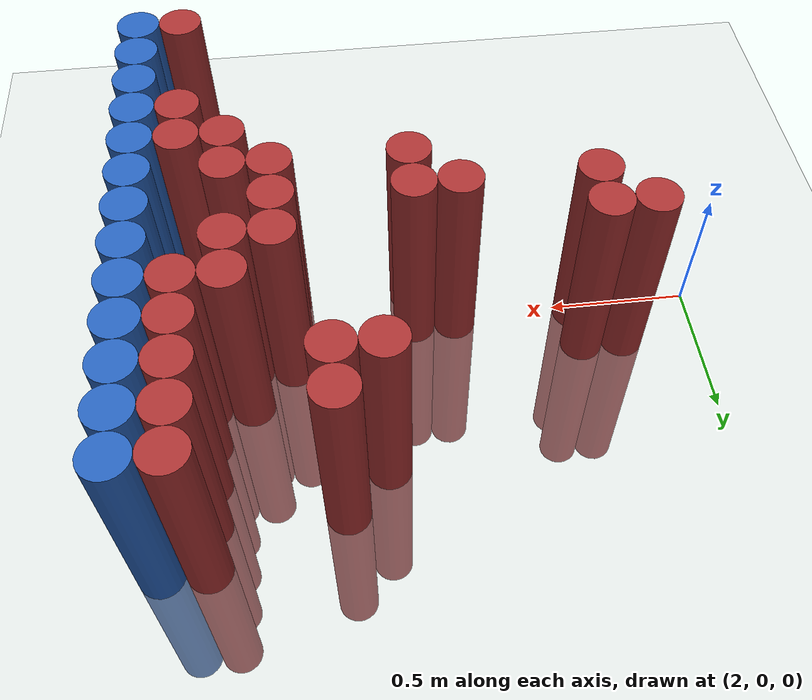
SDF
<sdf version="1.6">
 <world name="default">
  <model name="ground_plane">
   <static>1</static>
   <link name="link">
    <collision name="collision">
     <geometry><plane><normal>0 0 1</normal><size>100 100</size></plane></geometry>
     <surface><friction><ode><mu>100</mu><mu2>50</mu2></ode></friction></surface>
    </collision>
    <visual name="visual">
     <cast_shadows>0</cast_shadows>
     <geometry><plane><normal>0 0 1</normal><size>100 100</size></plane></geometry>
     <material>
      <script><uri>file://media/materials/scripts/gazebo.material</uri><name>Gazebo/Grey</name></script>
     </material>
    </visual>
   </link>
  </model>
  <model name="unit_cylinder_102">
   <static>1</static>
   <pose>3.925000 -0.875000 0.000000 0.000000 0.000000 0.000000</pose>
   <link name="link">
    <inertial>
     <mass>1</mass>
     <inertia><ixx>0.145833</ixx><ixy>0</ixy><ixz>0</ixz><iyy>0.145833</iyy><iyz>0</iyz><izz>0.125</izz></inertia>
    </inertial>
    <collision name="collision">
     <geometry><cylinder><radius>0.075000</radius><length>1.5</length></cylinder></geometry>
    </collision>
    <visual name="visual">
     <geometry><cylinder><radius>0.075000</radius><length>1.5</length></cylinder></geometry>
     <material>
      <ambient>0.152000 0.379000 0.720000 1</ambient>
      <diffuse>0.152000 0.379000 0.720000 1</diffuse>
     </material>
     <material>
      <script><name>Gazebo/Grey</name><uri>file://media/materials/scripts/gazebo.material</uri></script>
     </material>
    </visual>
   </link>
  </model>
  <model name="unit_cylinder_104">
   <static>1</static>
   <pose>3.925000 -0.725000 0.000000 0.000000 0.000000 0.000000</pose>
   <link name="link">
    <inertial>
     <mass>1</mass>
     <inertia><ixx>0.145833</ixx><ixy>0</ixy><ixz>0</ixz><iyy>0.145833</iyy><iyz>0</iyz><izz>0.125</izz></inertia>
    </inertial>
    <collision name="collision">
     <geometry><cylinder><radius>0.075000</radius><length>1.5</length></cylinder></geometry>
    </collision>
    <visual name="visual">
     <geometry><cylinder><radius>0.075000</radius><length>1.5</length></cylinder></geometry>
     <material>
      <ambient>0.152000 0.379000 0.720000 1</ambient>
      <diffuse>0.152000 0.379000 0.720000 1</diffuse>
     </material>
     <material>
      <script><name>Gazebo/Grey</name><uri>file://media/materials/scripts/gazebo.material</uri></script>
     </material>
    </visual>
   </link>
  </model>
  <model name="unit_cylinder_106">
   <static>1</static>
   <pose>3.925000 -0.575000 0.000000 0.000000 0.000000 0.000000</pose>
   <link name="link">
    <inertial>
     <mass>1</mass>
     <inertia><ixx>0.145833</ixx><ixy>0</ixy><ixz>0</ixz><iyy>0.145833</iyy><iyz>0</iyz><izz>0.125</izz></inertia>
    </inertial>
    <collision name="collision">
     <geometry><cylinder><radius>0.075000</radius><length>1.5</length></cylinder></geometry>
    </collision>
    <visual name="visual">
     <geometry><cylinder><radius>0.075000</radius><length>1.5</length></cylinder></geometry>
     <material>
      <ambient>0.152000 0.379000 0.720000 1</ambient>
      <diffuse>0.152000 0.379000 0.720000 1</diffuse>
     </material>
     <material>
      <script><name>Gazebo/Grey</name><uri>file://media/materials/scripts/gazebo.material</uri></script>
     </material>
    </visual>
   </link>
  </model>
  <model name="unit_cylinder_108">
   <static>1</static>
   <pose>3.925000 -0.425000 0.000000 0.000000 0.000000 0.000000</pose>
   <link name="link">
    <inertial>
     <mass>1</mass>
     <inertia><ixx>0.145833</ixx><ixy>0</ixy><ixz>0</ixz><iyy>0.145833</iyy><iyz>0</iyz><izz>0.125</izz></inertia>
    </inertial>
    <collision name="collision">
     <geometry><cylinder><radius>0.075000</radius><length>1.5</length></cylinder></geometry>
    </collision>
    <visual name="visual">
     <geometry><cylinder><radius>0.075000</radius><length>1.5</length></cylinder></geometry>
     <material>
      <ambient>0.152000 0.379000 0.720000 1</ambient>
      <diffuse>0.152000 0.379000 0.720000 1</diffuse>
     </material>
     <material>
      <script><name>Gazebo/Grey</name><uri>file://media/materials/scripts/gazebo.material</uri></script>
     </material>
    </visual>
   </link>
  </model>
  <model name="unit_cylinder_110">
   <static>1</static>
   <pose>3.925000 -0.275000 0.000000 0.000000 0.000000 0.000000</pose>
   <link name="link">
    <inertial>
     <mass>1</mass>
     <inertia><ixx>0.145833</ixx><ixy>0</ixy><ixz>0</ixz><iyy>0.145833</iyy><iyz>0</iyz><izz>0.125</izz></inertia>
    </inertial>
    <collision name="collision">
     <geometry><cylinder><radius>0.075000</radius><length>1.5</length></cylinder></geometry>
    </collision>
    <visual name="visual">
     <geometry><cylinder><radius>0.075000</radius><length>1.5</length></cylinder></geometry>
     <material>
      <ambient>0.152000 0.379000 0.720000 1</ambient>
      <diffuse>0.152000 0.379000 0.720000 1</diffuse>
     </material>
     <material>
      <script><name>Gazebo/Grey</name><uri>file://media/materials/scripts/gazebo.material</uri></script>
     </material>
    </visual>
   </link>
  </model>
  <model name="unit_cylinder_112">
   <static>1</static>
   <pose>3.925000 -0.125000 0.000000 0.000000 0.000000 0.000000</pose>
   <link name="link">
    <inertial>
     <mass>1</mass>
     <inertia><ixx>0.145833</ixx><ixy>0</ixy><ixz>0</ixz><iyy>0.145833</iyy><iyz>0</iyz><izz>0.125</izz></inertia>
    </inertial>
    <collision name="collision">
     <geometry><cylinder><radius>0.075000</radius><length>1.5</length></cylinder></geometry>
    </collision>
    <visual name="visual">
     <geometry><cylinder><radius>0.075000</radius><length>1.5</length></cylinder></geometry>
     <material>
      <ambient>0.152000 0.379000 0.720000 1</ambient>
      <diffuse>0.152000 0.379000 0.720000 1</diffuse>
     </material>
     <material>
      <script><name>Gazebo/Grey</name><uri>file://media/materials/scripts/gazebo.material</uri></script>
     </material>
    </visual>
   </link>
  </model>
  <model name="unit_cylinder_114">
   <static>1</static>
   <pose>3.925000 0.025000 0.000000 0.000000 0.000000 0.000000</pose>
   <link name="link">
    <inertial>
     <mass>1</mass>
     <inertia><ixx>0.145833</ixx><ixy>0</ixy><ixz>0</ixz><iyy>0.145833</iyy><iyz>0</iyz><izz>0.125</izz></inertia>
    </inertial>
    <collision name="collision">
     <geometry><cylinder><radius>0.075000</radius><length>1.5</length></cylinder></geometry>
    </collision>
    <visual name="visual">
     <geometry><cylinder><radius>0.075000</radius><length>1.5</length></cylinder></geometry>
     <material>
      <ambient>0.152000 0.379000 0.720000 1</ambient>
      <diffuse>0.152000 0.379000 0.720000 1</diffuse>
     </material>
     <material>
      <script><name>Gazebo/Grey</name><uri>file://media/materials/scripts/gazebo.material</uri></script>
     </material>
    </visual>
   </link>
  </model>
  <model name="unit_cylinder_116">
   <static>1</static>
   <pose>3.925000 0.175000 0.000000 0.000000 0.000000 0.000000</pose>
   <link name="link">
    <inertial>
     <mass>1</mass>
     <inertia><ixx>0.145833</ixx><ixy>0</ixy><ixz>0</ixz><iyy>0.145833</iyy><iyz>0</iyz><izz>0.125</izz></inertia>
    </inertial>
    <collision name="collision">
     <geometry><cylinder><radius>0.075000</radius><length>1.5</length></cylinder></geometry>
    </collision>
    <visual name="visual">
     <geometry><cylinder><radius>0.075000</radius><length>1.5</length></cylinder></geometry>
     <material>
      <ambient>0.152000 0.379000 0.720000 1</ambient>
      <diffuse>0.152000 0.379000 0.720000 1</diffuse>
     </material>
     <material>
      <script><name>Gazebo/Grey</name><uri>file://media/materials/scripts/gazebo.material</uri></script>
     </material>
    </visual>
   </link>
  </model>
  <model name="unit_cylinder_118">
   <static>1</static>
   <pose>3.925000 0.325000 0.000000 0.000000 0.000000 0.000000</pose>
   <link name="link">
    <inertial>
     <mass>1</mass>
     <inertia><ixx>0.145833</ixx><ixy>0</ixy><ixz>0</ixz><iyy>0.145833</iyy><iyz>0</iyz><izz>0.125</izz></inertia>
    </inertial>
    <collision name="collision">
     <geometry><cylinder><radius>0.075000</radius><length>1.5</length></cylinder></geometry>
    </collision>
    <visual name="visual">
     <geometry><cylinder><radius>0.075000</radius><length>1.5</length></cylinder></geometry>
     <material>
      <ambient>0.152000 0.379000 0.720000 1</ambient>
      <diffuse>0.152000 0.379000 0.720000 1</diffuse>
     </material>
     <material>
      <script><name>Gazebo/Grey</name><uri>file://media/materials/scripts/gazebo.material</uri></script>
     </material>
    </visual>
   </link>
  </model>
  <model name="unit_cylinder_120">
   <static>1</static>
   <pose>3.925000 0.475000 0.000000 0.000000 0.000000 0.000000</pose>
   <link name="link">
    <inertial>
     <mass>1</mass>
     <inertia><ixx>0.145833</ixx><ixy>0</ixy><ixz>0</ixz><iyy>0.145833</iyy><iyz>0</iyz><izz>0.125</izz></inertia>
    </inertial>
    <collision name="collision">
     <geometry><cylinder><radius>0.075000</radius><length>1.5</length></cylinder></geometry>
    </collision>
    <visual name="visual">
     <geometry><cylinder><radius>0.075000</radius><length>1.5</length></cylinder></geometry>
     <material>
      <ambient>0.152000 0.379000 0.720000 1</ambient>
      <diffuse>0.152000 0.379000 0.720000 1</diffuse>
     </material>
     <material>
      <script><name>Gazebo/Grey</name><uri>file://media/materials/scripts/gazebo.material</uri></script>
     </material>
    </visual>
   </link>
  </model>
  <model name="unit_cylinder_122">
   <static>1</static>
   <pose>3.925000 0.625000 0.000000 0.000000 0.000000 0.000000</pose>
   <link name="link">
    <inertial>
     <mass>1</mass>
     <inertia><ixx>0.145833</ixx><ixy>0</ixy><ixz>0</ixz><iyy>0.145833</iyy><iyz>0</iyz><izz>0.125</izz></inertia>
    </inertial>
    <collision name="collision">
     <geometry><cylinder><radius>0.075000</radius><length>1.5</length></cylinder></geometry>
    </collision>
    <visual name="visual">
     <geometry><cylinder><radius>0.075000</radius><length>1.5</length></cylinder></geometry>
     <material>
      <ambient>0.152000 0.379000 0.720000 1</ambient>
      <diffuse>0.152000 0.379000 0.720000 1</diffuse>
     </material>
     <material>
      <script><name>Gazebo/Grey</name><uri>file://media/materials/scripts/gazebo.material</uri></script>
     </material>
    </visual>
   </link>
  </model>
  <model name="unit_cylinder_124">
   <static>1</static>
   <pose>3.925000 0.775000 0.000000 0.000000 0.000000 0.000000</pose>
   <link name="link">
    <inertial>
     <mass>1</mass>
     <inertia><ixx>0.145833</ixx><ixy>0</ixy><ixz>0</ixz><iyy>0.145833</iyy><iyz>0</iyz><izz>0.125</izz></inertia>
    </inertial>
    <collision name="collision">
     <geometry><cylinder><radius>0.075000</radius><length>1.5</length></cylinder></geometry>
    </collision>
    <visual name="visual">
     <geometry><cylinder><radius>0.075000</radius><length>1.5</length></cylinder></geometry>
     <material>
      <ambient>0.152000 0.379000 0.720000 1</ambient>
      <diffuse>0.152000 0.379000 0.720000 1</diffuse>
     </material>
     <material>
      <script><name>Gazebo/Grey</name><uri>file://media/materials/scripts/gazebo.material</uri></script>
     </material>
    </visual>
   </link>
  </model>
  <model name="unit_cylinder_126">
   <static>1</static>
   <pose>3.925000 0.925000 0.000000 0.000000 0.000000 0.000000</pose>
   <link name="link">
    <inertial>
     <mass>1</mass>
     <inertia><ixx>0.145833</ixx><ixy>0</ixy><ixz>0</ixz><iyy>0.145833</iyy><iyz>0</iyz><izz>0.125</izz></inertia>
    </inertial>
    <collision name="collision">
     <geometry><cylinder><radius>0.075000</radius><length>1.5</length></cylinder></geometry>
    </collision>
    <visual name="visual">
     <geometry><cylinder><radius>0.075000</radius><length>1.5</length></cylinder></geometry>
     <material>
      <ambient>0.152000 0.379000 0.720000 1</ambient>
      <diffuse>0.152000 0.379000 0.720000 1</diffuse>
     </material>
     <material>
      <script><name>Gazebo/Grey</name><uri>file://media/materials/scripts/gazebo.material</uri></script>
     </material>
    </visual>
   </link>
  </model>
  <model name="unit_cylinder_394">
   <static>1</static>
   <pose>2.275000 0.175000 0.000000 0.000000 0.000000 0.000000</pose>
   <link name="link">
    <inertial>
     <mass>1</mass>
     <inertia><ixx>0.145833</ixx><ixy>0</ixy><ixz>0</ixz><iyy>0.145833</iyy><iyz>0</iyz><izz>0.125</izz></inertia>
    </inertial>
    <collision name="collision">
     <geometry><cylinder><radius>0.075000</radius><length>1.5</length></cylinder></geometry>
    </collision>
    <visual name="visual">
     <geometry><cylinder><radius>0.075000</radius><length>1.5</length></cylinder></geometry>
     <material>
      <ambient>0.648000 0.192000 0.192000 1</ambient>
      <diffuse>0.648000 0.192000 0.192000 1</diffuse>
     </material>
     <material>
      <script><name>Gazebo/Grey</name><uri>file://media/materials/scripts/gazebo.material</uri></script>
     </material>
    </visual>
   </link>
  </model>
  <model name="unit_cylinder_400">
   <static>1</static>
   <pose>2.425000 0.025000 0.000000 0.000000 0.000000 0.000000</pose>
   <link name="link">
    <inertial>
     <mass>1</mass>
     <inertia><ixx>0.145833</ixx><ixy>0</ixy><ixz>0</ixz><iyy>0.145833</iyy><iyz>0</iyz><izz>0.125</izz></inertia>
    </inertial>
    <collision name="collision">
     <geometry><cylinder><radius>0.075000</radius><length>1.5</length></cylinder></geometry>
    </collision>
    <visual name="visual">
     <geometry><cylinder><radius>0.075000</radius><length>1.5</length></cylinder></geometry>
     <material>
      <ambient>0.648000 0.192000 0.192000 1</ambient>
      <diffuse>0.648000 0.192000 0.192000 1</diffuse>
     </material>
     <material>
      <script><name>Gazebo/Grey</name><uri>file://media/materials/scripts/gazebo.material</uri></script>
     </material>
    </visual>
   </link>
  </model>
  <model name="unit_cylinder_401">
   <static>1</static>
   <pose>2.425000 0.175000 0.000000 0.000000 0.000000 0.000000</pose>
   <link name="link">
    <inertial>
     <mass>1</mass>
     <inertia><ixx>0.145833</ixx><ixy>0</ixy><ixz>0</ixz><iyy>0.145833</iyy><iyz>0</iyz><izz>0.125</izz></inertia>
    </inertial>
    <collision name="collision">
     <geometry><cylinder><radius>0.075000</radius><length>1.5</length></cylinder></geometry>
    </collision>
    <visual name="visual">
     <geometry><cylinder><radius>0.075000</radius><length>1.5</length></cylinder></geometry>
     <material>
      <ambient>0.648000 0.192000 0.192000 1</ambient>
      <diffuse>0.648000 0.192000 0.192000 1</diffuse>
     </material>
     <material>
      <script><name>Gazebo/Grey</name><uri>file://media/materials/scripts/gazebo.material</uri></script>
     </material>
    </visual>
   </link>
  </model>
  <model name="unit_cylinder_417">
   <static>1</static>
   <pose>2.875000 0.025000 0.000000 0.000000 0.000000 0.000000</pose>
   <link name="link">
    <inertial>
     <mass>1</mass>
     <inertia><ixx>0.145833</ixx><ixy>0</ixy><ixz>0</ixz><iyy>0.145833</iyy><iyz>0</iyz><izz>0.125</izz></inertia>
    </inertial>
    <collision name="collision">
     <geometry><cylinder><radius>0.075000</radius><length>1.5</length></cylinder></geometry>
    </collision>
    <visual name="visual">
     <geometry><cylinder><radius>0.075000</radius><length>1.5</length></cylinder></geometry>
     <material>
      <ambient>0.648000 0.192000 0.192000 1</ambient>
      <diffuse>0.648000 0.192000 0.192000 1</diffuse>
     </material>
     <material>
      <script><name>Gazebo/Grey</name><uri>file://media/materials/scripts/gazebo.material</uri></script>
     </material>
    </visual>
   </link>
  </model>
  <model name="unit_cylinder_418">
   <static>1</static>
   <pose>3.025000 -0.125000 0.000000 0.000000 0.000000 0.000000</pose>
   <link name="link">
    <inertial>
     <mass>1</mass>
     <inertia><ixx>0.145833</ixx><ixy>0</ixy><ixz>0</ixz><iyy>0.145833</iyy><iyz>0</iyz><izz>0.125</izz></inertia>
    </inertial>
    <collision name="collision">
     <geometry><cylinder><radius>0.075000</radius><length>1.5</length></cylinder></geometry>
    </collision>
    <visual name="visual">
     <geometry><cylinder><radius>0.075000</radius><length>1.5</length></cylinder></geometry>
     <material>
      <ambient>0.648000 0.192000 0.192000 1</ambient>
      <diffuse>0.648000 0.192000 0.192000 1</diffuse>
     </material>
     <material>
      <script><name>Gazebo/Grey</name><uri>file://media/materials/scripts/gazebo.material</uri></script>
     </material>
    </visual>
   </link>
  </model>
  <model name="unit_cylinder_419">
   <static>1</static>
   <pose>3.025000 0.025000 0.000000 0.000000 0.000000 0.000000</pose>
   <link name="link">
    <inertial>
     <mass>1</mass>
     <inertia><ixx>0.145833</ixx><ixy>0</ixy><ixz>0</ixz><iyy>0.145833</iyy><iyz>0</iyz><izz>0.125</izz></inertia>
    </inertial>
    <collision name="collision">
     <geometry><cylinder><radius>0.075000</radius><length>1.5</length></cylinder></geometry>
    </collision>
    <visual name="visual">
     <geometry><cylinder><radius>0.075000</radius><length>1.5</length></cylinder></geometry>
     <material>
      <ambient>0.648000 0.192000 0.192000 1</ambient>
      <diffuse>0.648000 0.192000 0.192000 1</diffuse>
     </material>
     <material>
      <script><name>Gazebo/Grey</name><uri>file://media/materials/scripts/gazebo.material</uri></script>
     </material>
    </visual>
   </link>
  </model>
  <model name="unit_cylinder_422">
   <static>1</static>
   <pose>3.175000 0.625000 0.000000 0.000000 0.000000 0.000000</pose>
   <link name="link">
    <inertial>
     <mass>1</mass>
     <inertia><ixx>0.145833</ixx><ixy>0</ixy><ixz>0</ixz><iyy>0.145833</iyy><iyz>0</iyz><izz>0.125</izz></inertia>
    </inertial>
    <collision name="collision">
     <geometry><cylinder><radius>0.075000</radius><length>1.5</length></cylinder></geometry>
    </collision>
    <visual name="visual">
     <geometry><cylinder><radius>0.075000</radius><length>1.5</length></cylinder></geometry>
     <material>
      <ambient>0.648000 0.192000 0.192000 1</ambient>
      <diffuse>0.648000 0.192000 0.192000 1</diffuse>
     </material>
     <material>
      <script><name>Gazebo/Grey</name><uri>file://media/materials/scripts/gazebo.material</uri></script>
     </material>
    </visual>
   </link>
  </model>
  <model name="unit_cylinder_424">
   <static>1</static>
   <pose>3.325000 0.625000 0.000000 0.000000 0.000000 0.000000</pose>
   <link name="link">
    <inertial>
     <mass>1</mass>
     <inertia><ixx>0.145833</ixx><ixy>0</ixy><ixz>0</ixz><iyy>0.145833</iyy><iyz>0</iyz><izz>0.125</izz></inertia>
    </inertial>
    <collision name="collision">
     <geometry><cylinder><radius>0.075000</radius><length>1.5</length></cylinder></geometry>
    </collision>
    <visual name="visual">
     <geometry><cylinder><radius>0.075000</radius><length>1.5</length></cylinder></geometry>
     <material>
      <ambient>0.648000 0.192000 0.192000 1</ambient>
      <diffuse>0.648000 0.192000 0.192000 1</diffuse>
     </material>
     <material>
      <script><name>Gazebo/Grey</name><uri>file://media/materials/scripts/gazebo.material</uri></script>
     </material>
    </visual>
   </link>
  </model>
  <model name="unit_cylinder_425">
   <static>1</static>
   <pose>3.325000 0.775000 0.000000 0.000000 0.000000 0.000000</pose>
   <link name="link">
    <inertial>
     <mass>1</mass>
     <inertia><ixx>0.145833</ixx><ixy>0</ixy><ixz>0</ixz><iyy>0.145833</iyy><iyz>0</iyz><izz>0.125</izz></inertia>
    </inertial>
    <collision name="collision">
     <geometry><cylinder><radius>0.075000</radius><length>1.5</length></cylinder></geometry>
    </collision>
    <visual name="visual">
     <geometry><cylinder><radius>0.075000</radius><length>1.5</length></cylinder></geometry>
     <material>
      <ambient>0.648000 0.192000 0.192000 1</ambient>
      <diffuse>0.648000 0.192000 0.192000 1</diffuse>
     </material>
     <material>
      <script><name>Gazebo/Grey</name><uri>file://media/materials/scripts/gazebo.material</uri></script>
     </material>
    </visual>
   </link>
  </model>
  <model name="unit_cylinder_426">
   <static>1</static>
   <pose>3.475000 -0.125000 0.000000 0.000000 0.000000 0.000000</pose>
   <link name="link">
    <inertial>
     <mass>1</mass>
     <inertia><ixx>0.145833</ixx><ixy>0</ixy><ixz>0</ixz><iyy>0.145833</iyy><iyz>0</iyz><izz>0.125</izz></inertia>
    </inertial>
    <collision name="collision">
     <geometry><cylinder><radius>0.075000</radius><length>1.5</length></cylinder></geometry>
    </collision>
    <visual name="visual">
     <geometry><cylinder><radius>0.075000</radius><length>1.5</length></cylinder></geometry>
     <material>
      <ambient>0.648000 0.192000 0.192000 1</ambient>
      <diffuse>0.648000 0.192000 0.192000 1</diffuse>
     </material>
     <material>
      <script><name>Gazebo/Grey</name><uri>file://media/materials/scripts/gazebo.material</uri></script>
     </material>
    </visual>
   </link>
  </model>
  <model name="unit_cylinder_427">
   <static>1</static>
   <pose>3.475000 0.025000 0.000000 0.000000 0.000000 0.000000</pose>
   <link name="link">
    <inertial>
     <mass>1</mass>
     <inertia><ixx>0.145833</ixx><ixy>0</ixy><ixz>0</ixz><iyy>0.145833</iyy><iyz>0</iyz><izz>0.125</izz></inertia>
    </inertial>
    <collision name="collision">
     <geometry><cylinder><radius>0.075000</radius><length>1.5</length></cylinder></geometry>
    </collision>
    <visual name="visual">
     <geometry><cylinder><radius>0.075000</radius><length>1.5</length></cylinder></geometry>
     <material>
      <ambient>0.648000 0.192000 0.192000 1</ambient>
      <diffuse>0.648000 0.192000 0.192000 1</diffuse>
     </material>
     <material>
      <script><name>Gazebo/Grey</name><uri>file://media/materials/scripts/gazebo.material</uri></script>
     </material>
    </visual>
   </link>
  </model>
  <model name="unit_cylinder_428">
   <static>1</static>
   <pose>3.475000 0.175000 0.000000 0.000000 0.000000 0.000000</pose>
   <link name="link">
    <inertial>
     <mass>1</mass>
     <inertia><ixx>0.145833</ixx><ixy>0</ixy><ixz>0</ixz><iyy>0.145833</iyy><iyz>0</iyz><izz>0.125</izz></inertia>
    </inertial>
    <collision name="collision">
     <geometry><cylinder><radius>0.075000</radius><length>1.5</length></cylinder></geometry>
    </collision>
    <visual name="visual">
     <geometry><cylinder><radius>0.075000</radius><length>1.5</length></cylinder></geometry>
     <material>
      <ambient>0.648000 0.192000 0.192000 1</ambient>
      <diffuse>0.648000 0.192000 0.192000 1</diffuse>
     </material>
     <material>
      <script><name>Gazebo/Grey</name><uri>file://media/materials/scripts/gazebo.material</uri></script>
     </material>
    </visual>
   </link>
  </model>
  <model name="unit_cylinder_429">
   <static>1</static>
   <pose>3.625000 -0.275000 0.000000 0.000000 0.000000 0.000000</pose>
   <link name="link">
    <inertial>
     <mass>1</mass>
     <inertia><ixx>0.145833</ixx><ixy>0</ixy><ixz>0</ixz><iyy>0.145833</iyy><iyz>0</iyz><izz>0.125</izz></inertia>
    </inertial>
    <collision name="collision">
     <geometry><cylinder><radius>0.075000</radius><length>1.5</length></cylinder></geometry>
    </collision>
    <visual name="visual">
     <geometry><cylinder><radius>0.075000</radius><length>1.5</length></cylinder></geometry>
     <material>
      <ambient>0.648000 0.192000 0.192000 1</ambient>
      <diffuse>0.648000 0.192000 0.192000 1</diffuse>
     </material>
     <material>
      <script><name>Gazebo/Grey</name><uri>file://media/materials/scripts/gazebo.material</uri></script>
     </material>
    </visual>
   </link>
  </model>
  <model name="unit_cylinder_430">
   <static>1</static>
   <pose>3.625000 -0.125000 0.000000 0.000000 0.000000 0.000000</pose>
   <link name="link">
    <inertial>
     <mass>1</mass>
     <inertia><ixx>0.145833</ixx><ixy>0</ixy><ixz>0</ixz><iyy>0.145833</iyy><iyz>0</iyz><izz>0.125</izz></inertia>
    </inertial>
    <collision name="collision">
     <geometry><cylinder><radius>0.075000</radius><length>1.5</length></cylinder></geometry>
    </collision>
    <visual name="visual">
     <geometry><cylinder><radius>0.075000</radius><length>1.5</length></cylinder></geometry>
     <material>
      <ambient>0.648000 0.192000 0.192000 1</ambient>
      <diffuse>0.648000 0.192000 0.192000 1</diffuse>
     </material>
     <material>
      <script><name>Gazebo/Grey</name><uri>file://media/materials/scripts/gazebo.material</uri></script>
     </material>
    </visual>
   </link>
  </model>
  <model name="unit_cylinder_431">
   <static>1</static>
   <pose>3.625000 0.175000 0.000000 0.000000 0.000000 0.000000</pose>
   <link name="link">
    <inertial>
     <mass>1</mass>
     <inertia><ixx>0.145833</ixx><ixy>0</ixy><ixz>0</ixz><iyy>0.145833</iyy><iyz>0</iyz><izz>0.125</izz></inertia>
    </inertial>
    <collision name="collision">
     <geometry><cylinder><radius>0.075000</radius><length>1.5</length></cylinder></geometry>
    </collision>
    <visual name="visual">
     <geometry><cylinder><radius>0.075000</radius><length>1.5</length></cylinder></geometry>
     <material>
      <ambient>0.648000 0.192000 0.192000 1</ambient>
      <diffuse>0.648000 0.192000 0.192000 1</diffuse>
     </material>
     <material>
      <script><name>Gazebo/Grey</name><uri>file://media/materials/scripts/gazebo.material</uri></script>
     </material>
    </visual>
   </link>
  </model>
  <model name="unit_cylinder_432">
   <static>1</static>
   <pose>3.625000 0.325000 0.000000 0.000000 0.000000 0.000000</pose>
   <link name="link">
    <inertial>
     <mass>1</mass>
     <inertia><ixx>0.145833</ixx><ixy>0</ixy><ixz>0</ixz><iyy>0.145833</iyy><iyz>0</iyz><izz>0.125</izz></inertia>
    </inertial>
    <collision name="collision">
     <geometry><cylinder><radius>0.075000</radius><length>1.5</length></cylinder></geometry>
    </collision>
    <visual name="visual">
     <geometry><cylinder><radius>0.075000</radius><length>1.5</length></cylinder></geometry>
     <material>
      <ambient>0.648000 0.192000 0.192000 1</ambient>
      <diffuse>0.648000 0.192000 0.192000 1</diffuse>
     </material>
     <material>
      <script><name>Gazebo/Grey</name><uri>file://media/materials/scripts/gazebo.material</uri></script>
     </material>
    </visual>
   </link>
  </model>
  <model name="unit_cylinder_436">
   <static>1</static>
   <pose>3.775000 -0.875000 0.000000 0.000000 0.000000 0.000000</pose>
   <link name="link">
    <inertial>
     <mass>1</mass>
     <inertia><ixx>0.145833</ixx><ixy>0</ixy><ixz>0</ixz><iyy>0.145833</iyy><iyz>0</iyz><izz>0.125</izz></inertia>
    </inertial>
    <collision name="collision">
     <geometry><cylinder><radius>0.075000</radius><length>1.5</length></cylinder></geometry>
    </collision>
    <visual name="visual">
     <geometry><cylinder><radius>0.075000</radius><length>1.5</length></cylinder></geometry>
     <material>
      <ambient>0.648000 0.192000 0.192000 1</ambient>
      <diffuse>0.648000 0.192000 0.192000 1</diffuse>
     </material>
     <material>
      <script><name>Gazebo/Grey</name><uri>file://media/materials/scripts/gazebo.material</uri></script>
     </material>
    </visual>
   </link>
  </model>
  <model name="unit_cylinder_437">
   <static>1</static>
   <pose>3.775000 -0.425000 0.000000 0.000000 0.000000 0.000000</pose>
   <link name="link">
    <inertial>
     <mass>1</mass>
     <inertia><ixx>0.145833</ixx><ixy>0</ixy><ixz>0</ixz><iyy>0.145833</iyy><iyz>0</iyz><izz>0.125</izz></inertia>
    </inertial>
    <collision name="collision">
     <geometry><cylinder><radius>0.075000</radius><length>1.5</length></cylinder></geometry>
    </collision>
    <visual name="visual">
     <geometry><cylinder><radius>0.075000</radius><length>1.5</length></cylinder></geometry>
     <material>
      <ambient>0.648000 0.192000 0.192000 1</ambient>
      <diffuse>0.648000 0.192000 0.192000 1</diffuse>
     </material>
     <material>
      <script><name>Gazebo/Grey</name><uri>file://media/materials/scripts/gazebo.material</uri></script>
     </material>
    </visual>
   </link>
  </model>
  <model name="unit_cylinder_438">
   <static>1</static>
   <pose>3.775000 -0.275000 0.000000 0.000000 0.000000 0.000000</pose>
   <link name="link">
    <inertial>
     <mass>1</mass>
     <inertia><ixx>0.145833</ixx><ixy>0</ixy><ixz>0</ixz><iyy>0.145833</iyy><iyz>0</iyz><izz>0.125</izz></inertia>
    </inertial>
    <collision name="collision">
     <geometry><cylinder><radius>0.075000</radius><length>1.5</length></cylinder></geometry>
    </collision>
    <visual name="visual">
     <geometry><cylinder><radius>0.075000</radius><length>1.5</length></cylinder></geometry>
     <material>
      <ambient>0.648000 0.192000 0.192000 1</ambient>
      <diffuse>0.648000 0.192000 0.192000 1</diffuse>
     </material>
     <material>
      <script><name>Gazebo/Grey</name><uri>file://media/materials/scripts/gazebo.material</uri></script>
     </material>
    </visual>
   </link>
  </model>
  <model name="unit_cylinder_439">
   <static>1</static>
   <pose>3.775000 0.325000 0.000000 0.000000 0.000000 0.000000</pose>
   <link name="link">
    <inertial>
     <mass>1</mass>
     <inertia><ixx>0.145833</ixx><ixy>0</ixy><ixz>0</ixz><iyy>0.145833</iyy><iyz>0</iyz><izz>0.125</izz></inertia>
    </inertial>
    <collision name="collision">
     <geometry><cylinder><radius>0.075000</radius><length>1.5</length></cylinder></geometry>
    </collision>
    <visual name="visual">
     <geometry><cylinder><radius>0.075000</radius><length>1.5</length></cylinder></geometry>
     <material>
      <ambient>0.648000 0.192000 0.192000 1</ambient>
      <diffuse>0.648000 0.192000 0.192000 1</diffuse>
     </material>
     <material>
      <script><name>Gazebo/Grey</name><uri>file://media/materials/scripts/gazebo.material</uri></script>
     </material>
    </visual>
   </link>
  </model>
  <model name="unit_cylinder_440">
   <static>1</static>
   <pose>3.775000 0.475000 0.000000 0.000000 0.000000 0.000000</pose>
   <link name="link">
    <inertial>
     <mass>1</mass>
     <inertia><ixx>0.145833</ixx><ixy>0</ixy><ixz>0</ixz><iyy>0.145833</iyy><iyz>0</iyz><izz>0.125</izz></inertia>
    </inertial>
    <collision name="collision">
     <geometry><cylinder><radius>0.075000</radius><length>1.5</length></cylinder></geometry>
    </collision>
    <visual name="visual">
     <geometry><cylinder><radius>0.075000</radius><length>1.5</length></cylinder></geometry>
     <material>
      <ambient>0.648000 0.192000 0.192000 1</ambient>
      <diffuse>0.648000 0.192000 0.192000 1</diffuse>
     </material>
     <material>
      <script><name>Gazebo/Grey</name><uri>file://media/materials/scripts/gazebo.material</uri></script>
     </material>
    </visual>
   </link>
  </model>
  <model name="unit_cylinder_441">
   <static>1</static>
   <pose>3.775000 0.625000 0.000000 0.000000 0.000000 0.000000</pose>
   <link name="link">
    <inertial>
     <mass>1</mass>
     <inertia><ixx>0.145833</ixx><ixy>0</ixy><ixz>0</ixz><iyy>0.145833</iyy><iyz>0</iyz><izz>0.125</izz></inertia>
    </inertial>
    <collision name="collision">
     <geometry><cylinder><radius>0.075000</radius><length>1.5</length></cylinder></geometry>
    </collision>
    <visual name="visual">
     <geometry><cylinder><radius>0.075000</radius><length>1.5</length></cylinder></geometry>
     <material>
      <ambient>0.648000 0.192000 0.192000 1</ambient>
      <diffuse>0.648000 0.192000 0.192000 1</diffuse>
     </material>
     <material>
      <script><name>Gazebo/Grey</name><uri>file://media/materials/scripts/gazebo.material</uri></script>
     </material>
    </visual>
   </link>
  </model>
  <model name="unit_cylinder_442">
   <static>1</static>
   <pose>3.775000 0.775000 0.000000 0.000000 0.000000 0.000000</pose>
   <link name="link">
    <inertial>
     <mass>1</mass>
     <inertia><ixx>0.145833</ixx><ixy>0</ixy><ixz>0</ixz><iyy>0.145833</iyy><iyz>0</iyz><izz>0.125</izz></inertia>
    </inertial>
    <collision name="collision">
     <geometry><cylinder><radius>0.075000</radius><length>1.5</length></cylinder></geometry>
    </collision>
    <visual name="visual">
     <geometry><cylinder><radius>0.075000</radius><length>1.5</length></cylinder></geometry>
     <material>
      <ambient>0.648000 0.192000 0.192000 1</ambient>
      <diffuse>0.648000 0.192000 0.192000 1</diffuse>
     </material>
     <material>
      <script><name>Gazebo/Grey</name><uri>file://media/materials/scripts/gazebo.material</uri></script>
     </material>
    </visual>
   </link>
  </model>
  <model name="unit_cylinder_443">
   <static>1</static>
   <pose>3.775000 0.925000 0.000000 0.000000 0.000000 0.000000</pose>
   <link name="link">
    <inertial>
     <mass>1</mass>
     <inertia><ixx>0.145833</ixx><ixy>0</ixy><ixz>0</ixz><iyy>0.145833</iyy><iyz>0</iyz><izz>0.125</izz></inertia>
    </inertial>
    <collision name="collision">
     <geometry><cylinder><radius>0.075000</radius><length>1.5</length></cylinder></geometry>
    </collision>
    <visual name="visual">
     <geometry><cylinder><radius>0.075000</radius><length>1.5</length></cylinder></geometry>
     <material>
      <ambient>0.648000 0.192000 0.192000 1</ambient>
      <diffuse>0.648000 0.192000 0.192000 1</diffuse>
     </material>
     <material>
      <script><name>Gazebo/Grey</name><uri>file://media/materials/scripts/gazebo.material</uri></script>
     </material>
    </visual>
   </link>
  </model>
  <model name="unit_cylinder_457">
   <static>1</static>
   <pose>3.925000 -0.875000 0.000000 0.000000 0.000000 0.000000</pose>
   <link name="link">
    <inertial>
     <mass>1</mass>
     <inertia><ixx>0.145833</ixx><ixy>0</ixy><ixz>0</ixz><iyy>0.145833</iyy><iyz>0</iyz><izz>0.125</izz></inertia>
    </inertial>
    <collision name="collision">
     <geometry><cylinder><radius>0.075000</radius><length>1.5</length></cylinder></geometry>
    </collision>
    <visual name="visual">
     <geometry><cylinder><radius>0.075000</radius><length>1.5</length></cylinder></geometry>
     <material>
      <ambient>0.152000 0.379000 0.720000 1</ambient>
      <diffuse>0.152000 0.379000 0.720000 1</diffuse>
     </material>
     <material>
      <script><name>Gazebo/Grey</name><uri>file://media/materials/scripts/gazebo.material</uri></script>
     </material>
    </visual>
   </link>
  </model>
  <model name="unit_cylinder_458">
   <static>1</static>
   <pose>3.925000 -0.725000 0.000000 0.000000 0.000000 0.000000</pose>
   <link name="link">
    <inertial>
     <mass>1</mass>
     <inertia><ixx>0.145833</ixx><ixy>0</ixy><ixz>0</ixz><iyy>0.145833</iyy><iyz>0</iyz><izz>0.125</izz></inertia>
    </inertial>
    <collision name="collision">
     <geometry><cylinder><radius>0.075000</radius><length>1.5</length></cylinder></geometry>
    </collision>
    <visual name="visual">
     <geometry><cylinder><radius>0.075000</radius><length>1.5</length></cylinder></geometry>
     <material>
      <ambient>0.152000 0.379000 0.720000 1</ambient>
      <diffuse>0.152000 0.379000 0.720000 1</diffuse>
     </material>
     <material>
      <script><name>Gazebo/Grey</name><uri>file://media/materials/scripts/gazebo.material</uri></script>
     </material>
    </visual>
   </link>
  </model>
  <model name="unit_cylinder_459">
   <static>1</static>
   <pose>3.925000 -0.575000 0.000000 0.000000 0.000000 0.000000</pose>
   <link name="link">
    <inertial>
     <mass>1</mass>
     <inertia><ixx>0.145833</ixx><ixy>0</ixy><ixz>0</ixz><iyy>0.145833</iyy><iyz>0</iyz><izz>0.125</izz></inertia>
    </inertial>
    <collision name="collision">
     <geometry><cylinder><radius>0.075000</radius><length>1.5</length></cylinder></geometry>
    </collision>
    <visual name="visual">
     <geometry><cylinder><radius>0.075000</radius><length>1.5</length></cylinder></geometry>
     <material>
      <ambient>0.152000 0.379000 0.720000 1</ambient>
      <diffuse>0.152000 0.379000 0.720000 1</diffuse>
     </material>
     <material>
      <script><name>Gazebo/Grey</name><uri>file://media/materials/scripts/gazebo.material</uri></script>
     </material>
    </visual>
   </link>
  </model>
  <model name="unit_cylinder_460">
   <static>1</static>
   <pose>3.925000 -0.425000 0.000000 0.000000 0.000000 0.000000</pose>
   <link name="link">
    <inertial>
     <mass>1</mass>
     <inertia><ixx>0.145833</ixx><ixy>0</ixy><ixz>0</ixz><iyy>0.145833</iyy><iyz>0</iyz><izz>0.125</izz></inertia>
    </inertial>
    <collision name="collision">
     <geometry><cylinder><radius>0.075000</radius><length>1.5</length></cylinder></geometry>
    </collision>
    <visual name="visual">
     <geometry><cylinder><radius>0.075000</radius><length>1.5</length></cylinder></geometry>
     <material>
      <ambient>0.152000 0.379000 0.720000 1</ambient>
      <diffuse>0.152000 0.379000 0.720000 1</diffuse>
     </material>
     <material>
      <script><name>Gazebo/Grey</name><uri>file://media/materials/scripts/gazebo.material</uri></script>
     </material>
    </visual>
   </link>
  </model>
  <model name="unit_cylinder_461">
   <static>1</static>
   <pose>3.925000 -0.275000 0.000000 0.000000 0.000000 0.000000</pose>
   <link name="link">
    <inertial>
     <mass>1</mass>
     <inertia><ixx>0.145833</ixx><ixy>0</ixy><ixz>0</ixz><iyy>0.145833</iyy><iyz>0</iyz><izz>0.125</izz></inertia>
    </inertial>
    <collision name="collision">
     <geometry><cylinder><radius>0.075000</radius><length>1.5</length></cylinder></geometry>
    </collision>
    <visual name="visual">
     <geometry><cylinder><radius>0.075000</radius><length>1.5</length></cylinder></geometry>
     <material>
      <ambient>0.152000 0.379000 0.720000 1</ambient>
      <diffuse>0.152000 0.379000 0.720000 1</diffuse>
     </material>
     <material>
      <script><name>Gazebo/Grey</name><uri>file://media/materials/scripts/gazebo.material</uri></script>
     </material>
    </visual>
   </link>
  </model>
  <model name="unit_cylinder_462">
   <static>1</static>
   <pose>3.925000 -0.125000 0.000000 0.000000 0.000000 0.000000</pose>
   <link name="link">
    <inertial>
     <mass>1</mass>
     <inertia><ixx>0.145833</ixx><ixy>0</ixy><ixz>0</ixz><iyy>0.145833</iyy><iyz>0</iyz><izz>0.125</izz></inertia>
    </inertial>
    <collision name="collision">
     <geometry><cylinder><radius>0.075000</radius><length>1.5</length></cylinder></geometry>
    </collision>
    <visual name="visual">
     <geometry><cylinder><radius>0.075000</radius><length>1.5</length></cylinder></geometry>
     <material>
      <ambient>0.152000 0.379000 0.720000 1</ambient>
      <diffuse>0.152000 0.379000 0.720000 1</diffuse>
     </material>
     <material>
      <script><name>Gazebo/Grey</name><uri>file://media/materials/scripts/gazebo.material</uri></script>
     </material>
    </visual>
   </link>
  </model>
  <model name="unit_cylinder_463">
   <static>1</static>
   <pose>3.925000 0.025000 0.000000 0.000000 0.000000 0.000000</pose>
   <link name="link">
    <inertial>
     <mass>1</mass>
     <inertia><ixx>0.145833</ixx><ixy>0</ixy><ixz>0</ixz><iyy>0.145833</iyy><iyz>0</iyz><izz>0.125</izz></inertia>
    </inertial>
    <collision name="collision">
     <geometry><cylinder><radius>0.075000</radius><length>1.5</length></cylinder></geometry>
    </collision>
    <visual name="visual">
     <geometry><cylinder><radius>0.075000</radius><length>1.5</length></cylinder></geometry>
     <material>
      <ambient>0.152000 0.379000 0.720000 1</ambient>
      <diffuse>0.152000 0.379000 0.720000 1</diffuse>
     </material>
     <material>
      <script><name>Gazebo/Grey</name><uri>file://media/materials/scripts/gazebo.material</uri></script>
     </material>
    </visual>
   </link>
  </model>
  <model name="unit_cylinder_464">
   <static>1</static>
   <pose>3.925000 0.175000 0.000000 0.000000 0.000000 0.000000</pose>
   <link name="link">
    <inertial>
     <mass>1</mass>
     <inertia><ixx>0.145833</ixx><ixy>0</ixy><ixz>0</ixz><iyy>0.145833</iyy><iyz>0</iyz><izz>0.125</izz></inertia>
    </inertial>
    <collision name="collision">
     <geometry><cylinder><radius>0.075000</radius><length>1.5</length></cylinder></geometry>
    </collision>
    <visual name="visual">
     <geometry><cylinder><radius>0.075000</radius><length>1.5</length></cylinder></geometry>
     <material>
      <ambient>0.152000 0.379000 0.720000 1</ambient>
      <diffuse>0.152000 0.379000 0.720000 1</diffuse>
     </material>
     <material>
      <script><name>Gazebo/Grey</name><uri>file://media/materials/scripts/gazebo.material</uri></script>
     </material>
    </visual>
   </link>
  </model>
  <model name="unit_cylinder_465">
   <static>1</static>
   <pose>3.925000 0.325000 0.000000 0.000000 0.000000 0.000000</pose>
   <link name="link">
    <inertial>
     <mass>1</mass>
     <inertia><ixx>0.145833</ixx><ixy>0</ixy><ixz>0</ixz><iyy>0.145833</iyy><iyz>0</iyz><izz>0.125</izz></inertia>
    </inertial>
    <collision name="collision">
     <geometry><cylinder><radius>0.075000</radius><length>1.5</length></cylinder></geometry>
    </collision>
    <visual name="visual">
     <geometry><cylinder><radius>0.075000</radius><length>1.5</length></cylinder></geometry>
     <material>
      <ambient>0.152000 0.379000 0.720000 1</ambient>
      <diffuse>0.152000 0.379000 0.720000 1</diffuse>
     </material>
     <material>
      <script><name>Gazebo/Grey</name><uri>file://media/materials/scripts/gazebo.material</uri></script>
     </material>
    </visual>
   </link>
  </model>
  <model name="unit_cylinder_466">
   <static>1</static>
   <pose>3.925000 0.475000 0.000000 0.000000 0.000000 0.000000</pose>
   <link name="link">
    <inertial>
     <mass>1</mass>
     <inertia><ixx>0.145833</ixx><ixy>0</ixy><ixz>0</ixz><iyy>0.145833</iyy><iyz>0</iyz><izz>0.125</izz></inertia>
    </inertial>
    <collision name="collision">
     <geometry><cylinder><radius>0.075000</radius><length>1.5</length></cylinder></geometry>
    </collision>
    <visual name="visual">
     <geometry><cylinder><radius>0.075000</radius><length>1.5</length></cylinder></geometry>
     <material>
      <ambient>0.152000 0.379000 0.720000 1</ambient>
      <diffuse>0.152000 0.379000 0.720000 1</diffuse>
     </material>
     <material>
      <script><name>Gazebo/Grey</name><uri>file://media/materials/scripts/gazebo.material</uri></script>
     </material>
    </visual>
   </link>
  </model>
  <model name="unit_cylinder_467">
   <static>1</static>
   <pose>3.925000 0.625000 0.000000 0.000000 0.000000 0.000000</pose>
   <link name="link">
    <inertial>
     <mass>1</mass>
     <inertia><ixx>0.145833</ixx><ixy>0</ixy><ixz>0</ixz><iyy>0.145833</iyy><iyz>0</iyz><izz>0.125</izz></inertia>
    </inertial>
    <collision name="collision">
     <geometry><cylinder><radius>0.075000</radius><length>1.5</length></cylinder></geometry>
    </collision>
    <visual name="visual">
     <geometry><cylinder><radius>0.075000</radius><length>1.5</length></cylinder></geometry>
     <material>
      <ambient>0.152000 0.379000 0.720000 1</ambient>
      <diffuse>0.152000 0.379000 0.720000 1</diffuse>
     </material>
     <material>
      <script><name>Gazebo/Grey</name><uri>file://media/materials/scripts/gazebo.material</uri></script>
     </material>
    </visual>
   </link>
  </model>
  <model name="unit_cylinder_468">
   <static>1</static>
   <pose>3.925000 0.775000 0.000000 0.000000 0.000000 0.000000</pose>
   <link name="link">
    <inertial>
     <mass>1</mass>
     <inertia><ixx>0.145833</ixx><ixy>0</ixy><ixz>0</ixz><iyy>0.145833</iyy><iyz>0</iyz><izz>0.125</izz></inertia>
    </inertial>
    <collision name="collision">
     <geometry><cylinder><radius>0.075000</radius><length>1.5</length></cylinder></geometry>
    </collision>
    <visual name="visual">
     <geometry><cylinder><radius>0.075000</radius><length>1.5</length></cylinder></geometry>
     <material>
      <ambient>0.152000 0.379000 0.720000 1</ambient>
      <diffuse>0.152000 0.379000 0.720000 1</diffuse>
     </material>
     <material>
      <script><name>Gazebo/Grey</name><uri>file://media/materials/scripts/gazebo.material</uri></script>
     </material>
    </visual>
   </link>
  </model>
  <model name="unit_cylinder_469">
   <static>1</static>
   <pose>3.925000 0.925000 0.000000 0.000000 0.000000 0.000000</pose>
   <link name="link">
    <inertial>
     <mass>1</mass>
     <inertia><ixx>0.145833</ixx><ixy>0</ixy><ixz>0</ixz><iyy>0.145833</iyy><iyz>0</iyz><izz>0.125</izz></inertia>
    </inertial>
    <collision name="collision">
     <geometry><cylinder><radius>0.075000</radius><length>1.5</length></cylinder></geometry>
    </collision>
    <visual name="visual">
     <geometry><cylinder><radius>0.075000</radius><length>1.5</length></cylinder></geometry>
     <material>
      <ambient>0.152000 0.379000 0.720000 1</ambient>
      <diffuse>0.152000 0.379000 0.720000 1</diffuse>
     </material>
     <material>
      <script><name>Gazebo/Grey</name><uri>file://media/materials/scripts/gazebo.material</uri></script>
     </material>
    </visual>
   </link>
  </model>
 </world>
</sdf>
